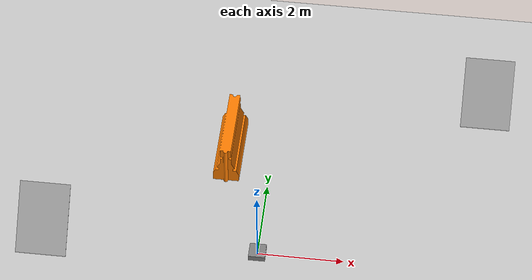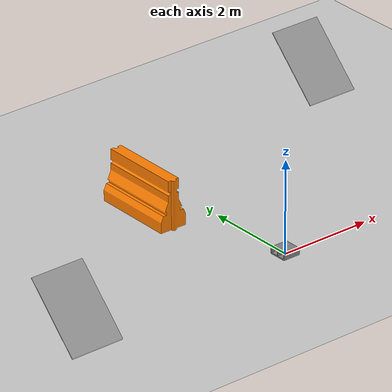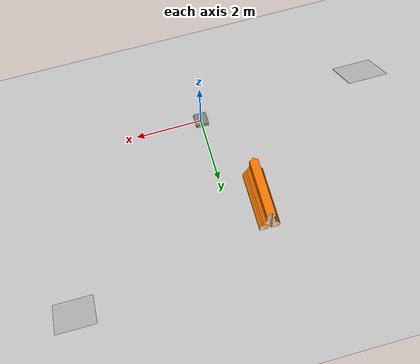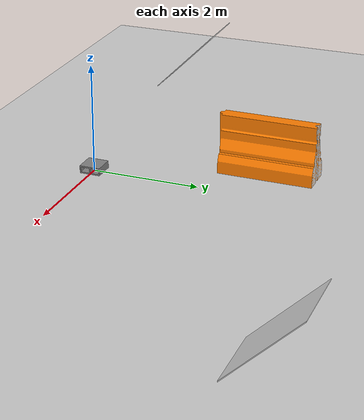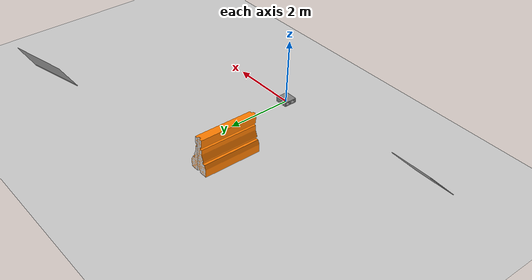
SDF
<sdf version="1.5">
 <world name="default">
  <physics name="default_physics" default="0" type="ode">
   <max_step_size>0.01</max_step_size>
   <real_time_factor>1</real_time_factor>
   <real_time_update_rate>100</real_time_update_rate>
   <gravity>0 0 -9.8</gravity>
   <magnetic_field>5.5645e-06 2.28758e-05 -4.23884e-05</magnetic_field>
  </physics>
  <light name="sun" type="directional">
   <pose>0 0 10 0 -0 0</pose>
   <diffuse>0.8 0.8 0.8 1</diffuse>
   <specular>0.2 0.2 0.2 1</specular>
   <attenuation>
    <range>1000</range>
    <constant>0.9</constant>
    <linear>0.01</linear>
    <quadratic>0.001</quadratic>
   </attenuation>
   <direction>-0.5 0.1 -0.9</direction>
  </light>
  <model name="ground_plane">
   <static>1</static>
   <link name="link">
    <collision name="collision">
     <geometry><plane><normal>0 0 1</normal><size>100 100</size></plane></geometry>
     <surface><friction><ode><mu>100</mu><mu2>50</mu2></ode></friction></surface>
    </collision>
    <visual name="visual">
     <cast_shadows>0</cast_shadows>
     <geometry><plane><normal>0 0 1</normal><size>100 100</size></plane></geometry>
     <material>
      <script><uri>file://media/materials/scripts/gazebo.material</uri><name>Gazebo/Grey</name></script>
     </material>
    </visual>
   </link>
  </model>
  <model name="cinder_block_wide">
   <pose>-0 -0 -0.00098 0 -0 0</pose>
   <link name="link">
    <inertial>
     <pose>0 0 0.0714375 0 -0 0</pose>
     <mass>5</mass>
     <inertia>
      <ixx>0.0681466</ixx>
      <ixy>0</ixy>
      <iyy>0.0681466</iyy>
      <ixz>0</ixz>
      <iyz>0</iyz>
      <izz>0.124808</izz>
     </inertia>
    </inertial>
    <visual name="visual">
     <geometry><mesh><uri>model://cinder_block_wide/meshes/cinder_block_wide.dae</uri></mesh></geometry>
    </visual>
    <collision name="top">
     <pose>0 0 0.130175 0 -0 0</pose>
     <geometry><box><size>0.387354 0.387354 0.0254</size></box></geometry>
     <surface>
      <contact><ode><max_vel>0.1</max_vel><min_depth>0.001</min_depth></ode></contact>
      <friction><ode><mu>1</mu><mu2>1</mu2></ode></friction>
     </surface>
    </collision>
    <collision name="bottom">
     <pose>0 0 0.0127 0 -0 0</pose>
     <geometry><box><size>0.387354 0.387354 0.0254</size></box></geometry>
     <surface>
      <contact><ode><max_vel>0.1</max_vel><min_depth>0.001</min_depth></ode></contact>
      <friction><ode><mu>1</mu><mu2>1</mu2></ode></friction>
     </surface>
    </collision>
    <collision name="left">
     <pose>0 -0.183355 0.0714375 0 -0 0</pose>
     <geometry><box><size>0.387354 0.020643 0.092075</size></box></geometry>
     <surface>
      <contact><ode><max_vel>0.1</max_vel><min_depth>0.001</min_depth></ode></contact>
      <friction><ode><mu>1</mu><mu2>1</mu2></ode></friction>
     </surface>
    </collision>
    <collision name="right">
     <pose>0 0.183355 0.0714375 0 -0 0</pose>
     <geometry><box><size>0.387354 0.020643 0.092075</size></box></geometry>
     <surface>
      <contact><ode><max_vel>0.1</max_vel><min_depth>0.001</min_depth></ode></contact>
      <friction><ode><mu>1</mu><mu2>1</mu2></ode></friction>
     </surface>
    </collision>
    <collision name="middle">
     <pose>0 0 0.0714375 0 -0 0</pose>
     <geometry><box><size>0.387354 0.0254 0.092075</size></box></geometry>
     <surface>
      <contact><ode><max_vel>0.1</max_vel><min_depth>0.001</min_depth></ode></contact>
      <friction><ode><mu>1</mu><mu2>1</mu2></ode></friction>
     </surface>
    </collision>
   </link>
  </model>
  <model name="nist_simple_ramp_120">
   <static>1</static>
   <link name="nist_simple_ramp_120_link">
    <pose>-5 0 0 0 -0 0</pose>
    <collision name="collision">
     <geometry>
      <mesh><uri>model://nist_simple_ramp_120/meshes/nist_simple_ramp_120.dae</uri><scale>1 1 1</scale></mesh>
     </geometry>
    </collision>
    <visual name="visual">
     <geometry>
      <mesh><uri>model://nist_simple_ramp_120/meshes/nist_simple_ramp_120.dae</uri><scale>1 1 1</scale></mesh>
     </geometry>
    </visual>
   </link>
  </model>
  <model name="nist_simple_ramp_120">
   <static>1</static>
   <link name="nist_simple_ramp_120_link">
    <pose>5 5 0 0 -0 0</pose>
    <collision name="collision">
     <geometry>
      <mesh><uri>model://nist_simple_ramp_120/meshes/nist_simple_ramp_120.dae</uri><scale>1 1 1</scale></mesh>
     </geometry>
    </collision>
    <visual name="visual">
     <geometry>
      <mesh><uri>model://nist_simple_ramp_120/meshes/nist_simple_ramp_120.dae</uri><scale>1 1 1</scale></mesh>
     </geometry>
    </visual>
   </link>
  </model>
  <scene><ambient>0.4 0.4 0.4 1</ambient><background>0.7 0.7 0.7 1</background><shadows>1</shadows></scene>
  <spherical_coordinates>
   <surface_model>EARTH_WGS84</surface_model>
   <latitude_deg>0</latitude_deg>
   <longitude_deg>0</longitude_deg>
   <elevation>0</elevation>
   <heading_deg>0</heading_deg>
  </spherical_coordinates>
  <model name="drc_practice_organge_jersey_barrier">
   <static>1</static>
   <link name="link">
    <visual name="visual">
     <geometry>
      <mesh><uri>model://drc_practice_orange_jersey_barrier/meshes/jersey_barrier.dae</uri></mesh>
     </geometry>
    </visual>
    <collision name="collision">
     <geometry>
      <mesh><uri>model://drc_practice_orange_jersey_barrier/meshes/jersey_barrier.dae</uri></mesh>
     </geometry>
    </collision>
   </link>
   <pose>-1 3 0 0 -0 0</pose>
  </model>
 </world>
</sdf>
